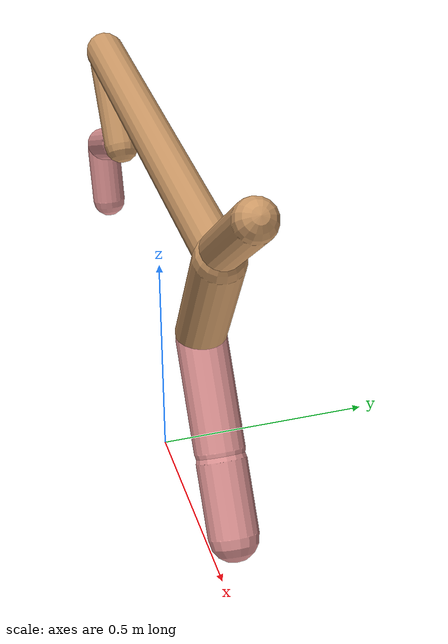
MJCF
<mujoco model="cheetah">
  <compiler angle="radian" coordinate="local" inertiafromgeom="true" settotalmass="14" />
  <default>
    <joint armature=".1" damping=".01" limited="true" solimplimit="0 .8 .03" solreflimit=".02 1" stiffness="8" />
    <geom conaffinity="0" condim="3" contype="1" friction="0.8 .1 .1" rgba="0.8 0.6 .4 1" solimp="0.0 0.8 0.01" solref="0.02 1" />
    <motor ctrllimited="true" ctrlrange="-1 1" />
  </default>
  <size nstack="300000" nuser_geom="1" />
  <option gravity="0 0 -9.81" timestep="0.01" />
  <worldbody>
    <body name="torso" pos="0.0 0.0 0.8087320958951173">
      <joint armature="0" axis="1 0 0" damping="0" limited="false" name="ignorex" pos="0 0 0" stiffness="0" type="slide" />
      <joint armature="0" axis="0 0 1" damping="0" limited="false" name="ignorez" pos="0 0 0" stiffness="0" type="slide" />
      <joint armature="0" axis="0 1 0" damping="0" limited="false" name="ignorey" pos="0 0 0" stiffness="0" type="hinge" />
      <geom fromto="-0.5 0.0 0.0 0.5059701319268199 0.0 0.0" name="torso" size="0.04499793090611259" type="capsule" />
      <geom axisangle="0 1 0 .87" name="head" pos="0.6059701319268199 0.0 0.1" size="0.042253629055315885 0.15" type="capsule" />

      <body name="bthigh" pos="-.5 0 0">
        <joint axis="0 1 0" damping="6" name="bthigh" pos="0 0 0" range="-.52 1.05" stiffness="240" type="hinge" />
        <geom axisangle="0 1 0 -3.8" name="bthigh" pos="0.07631097016584815 0.0 -0.0992042612156026" size="0.04047950711971688 0.10614710227331588" type="capsule" />
        <body name="bshin" pos="0.11262194033169629 0.0 -0.18840852243120518">
          <joint axis="0 1 0" damping="4.5" name="bshin" pos="0 0 0" range="-.785 .785" stiffness="180" type="hinge" />
          <geom axisangle="0 1 0 -2.03" name="bshin" pos="-0.10405059843873957 0.0 -0.05202529921936978" rgba="0.9 0.6 0.6 1" size="0.04047950711971688 0.10980734717929229" type="capsule" />
          <body name="bfoot" pos="-0.20810119687747913 0.0 -0.10405059843873957">
            <joint axis="0 1 0" damping="3" name="bfoot" pos="0 0 0" range="-.4 .785" stiffness="120" type="hinge" />
            <geom axisangle="0 1 0 -.27" name="bfoot" pos="0.022557887151405914 0.0 -0.07293716845621247" rgba="0.9 0.6 0.6 1" size="0.04047950711971688 0.06881260423235651" type="capsule" />
            <inertial mass="10" />
          </body>
        </body>
      </body>
      <body name="fthigh" pos="0.5059701319268199 0.0 0.0">
        <joint axis="0 1 0" damping="4.5" name="fthigh" pos="0 0 0" range="-1.5 0.8" stiffness="180" type="hinge" />
        <geom axisangle="0 1 0 .52" name="fthigh" pos="-0.07762203420981743 0.0 -0.133066344359687" size="0.052922389830647794 0.14812695476365126" type="capsule" />
        <body name="fshin" pos="-0.15524406841963487 0.0 -0.266132688719374">
          <joint axis="0 1 0" damping="3" name="fshin" pos="0 0 0" range="-1.2 1.1" stiffness="120" type="hinge" />
          <geom axisangle="0 1 0 -.6" name="fshin" pos="0.0720587146390238 0.0 -0.09977360488480218" rgba="0.9 0.6 0.6 1" size="0.052922389830647794 0.11805606921012805" type="capsule" />
          <body name="ffoot" pos="0.1441174292780476 0.0 -0.19954720976960436">
            <joint axis="0 1 0" damping="1.5" name="ffoot" pos="0 0 0" range="-3.1 -0.3" stiffness="60" type="hinge" />
            <geom axisangle="0 1 0 -.6" name="ffoot" pos="0.04930527137994753 0.0 -0.07669708881325173" rgba="0.9 0.6 0.6 1" size="0.052922389830647794 0.07796155513876382" type="capsule" />
            <inertial mass="10" />
          </body>
        </body>
      </body>
    </body>
  </worldbody>
  <actuator>
    <motor gear="120" joint="bthigh" name="bthigh" />
    <motor gear="90" joint="bshin" name="bshin" />
    <motor gear="60" joint="bfoot" name="bfoot" />
    <motor gear="120" joint="fthigh" name="fthigh" />
    <motor gear="60" joint="fshin" name="fshin" />
    <motor gear="30" joint="ffoot" name="ffoot" />
  </actuator>
</mujoco>
